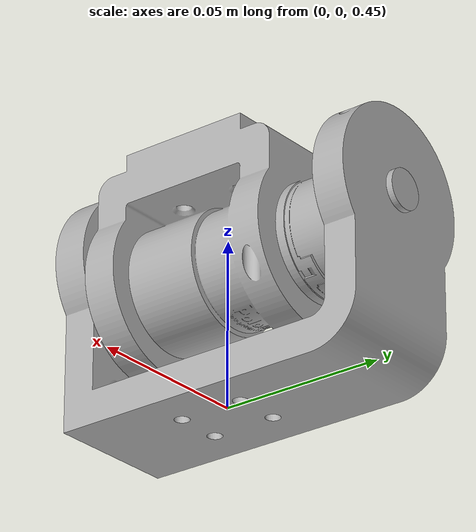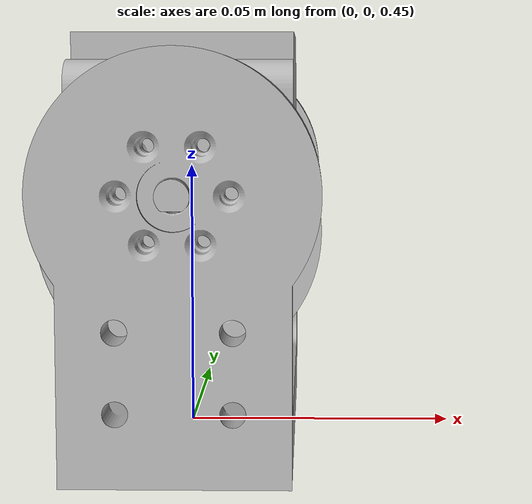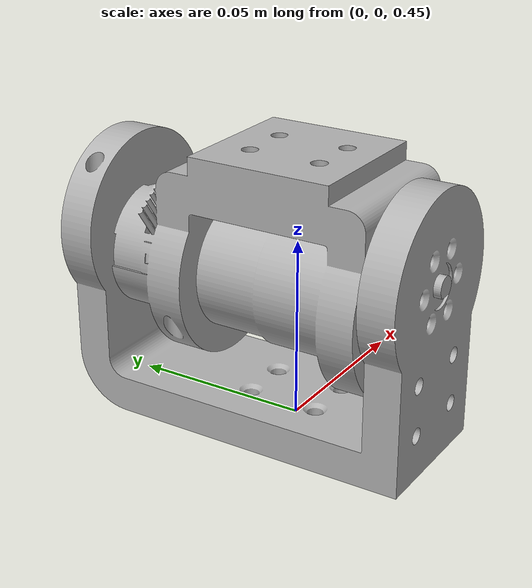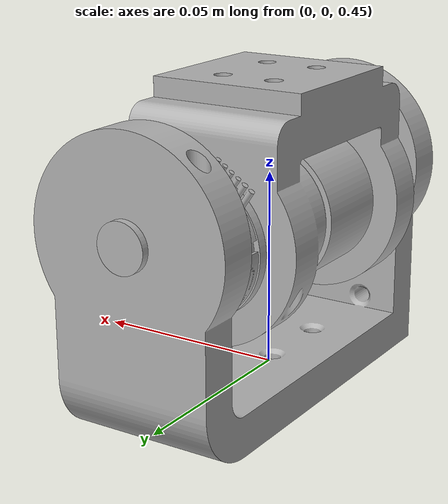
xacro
<?xml version="1.0" ?>
<robot name="test" xmlns:xacro="http://www.ros.org/wiki/xacro">

<xacro:include filename="$(find test_description)/urdf/materials.xacro" />
<xacro:include filename="$(find test_description)/urdf/test.trans" />
<xacro:include filename="$(find test_description)/urdf/test.gazebo" />
<link name="base_link">
  <inertial>
    <origin rpy="0 0 0" xyz="-2.4662403056558312e-05 0.005494145906680966 0.49465067657534334"/>
    <mass value="0.564739101917436"/>
    <inertia ixx="0.000285" ixy="0.0" ixz="0.0" iyy="0.000158" iyz="1.5e-05" izz="0.00023"/>
  </inertial>
  <visual>
    <origin rpy="0 0 0" xyz="0 0 0"/>
    <geometry>
      <mesh filename="package://test_description/meshes/base_link.stl" scale="0.001 0.001 0.001"/>
    </geometry>
    <material name="silver_default"/>
  </visual>
  <collision>
    <origin rpy="0 0 0" xyz="0 0 0"/>
    <geometry>
      <mesh filename="package://test_description/meshes/base_link.stl" scale="0.001 0.001 0.001"/>
    </geometry>
  </collision>
</link>

<link name="link1_1">
  <inertial>
    <origin rpy="0 0 0" xyz="-0.019913277356506266 0.5030002583764063 -0.05795166531882251"/>
    <mass value="0.09688109674811755"/>
    <inertia ixx="0.000192" ixy="-0.0" ixz="0.0" iyy="6.3e-05" iyz="4e-06" izz="0.000157"/>
  </inertial>
  <visual>
    <origin rpy="0 0 0" xyz="-0.019925 0.497075 -0.532"/>
    <geometry>
      <mesh filename="package://test_description/meshes/link1_1.stl" scale="0.001 0.001 0.001"/>
    </geometry>
    <material name="silver_default"/>
  </visual>
  <collision>
    <origin rpy="0 0 0" xyz="-0.019925 0.497075 -0.532"/>
    <geometry>
      <mesh filename="package://test_description/meshes/link1_1.stl" scale="0.001 0.001 0.001"/>
    </geometry>
  </collision>
</link>

<joint name="Rev1" type="continuous">
  <origin rpy="0 0 0" xyz="0.019925 -0.497075 0.532"/>
  <parent link="base_link"/>
  <child link="link1_1"/>
  <axis xyz="-0.0 -1.0 -0.0"/>
</joint>

</robot>

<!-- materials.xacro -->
<robot name="test" xmlns:xacro="http://www.ros.org/wiki/xacro" >

<material name="silver_default">
  <color rgba="0.700 0.700 0.700 1.000"/>
</material>

</robot>

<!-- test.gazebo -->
<robot name="test" xmlns:xacro="http://www.ros.org/wiki/xacro" >

<xacro:property name="body_color" value="Gazebo/Silver" />

<gazebo>
  <plugin filename="libgazebo_ros_control.so" name="control"/>
</gazebo>
<gazebo reference="base_link">
  <material>${body_color}</material>
  <mu1>0.2</mu1>
  <mu2>0.2</mu2>
  <selfCollide>true</selfCollide>
  <gravity>true</gravity>
</gazebo>

<gazebo reference="link1_1">
  <material>${body_color}</material>
  <mu1>0.2</mu1>
  <mu2>0.2</mu2>
  <selfCollide>true</selfCollide>
</gazebo>

</robot>
